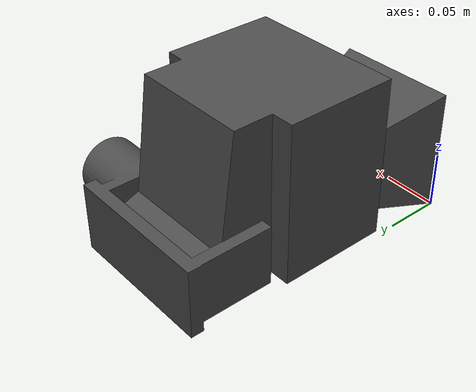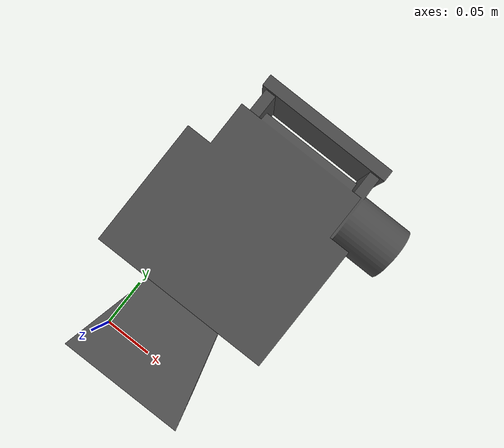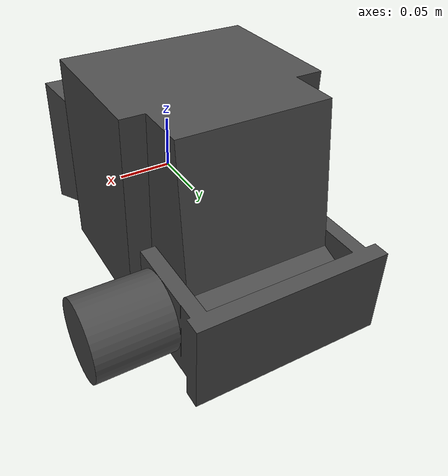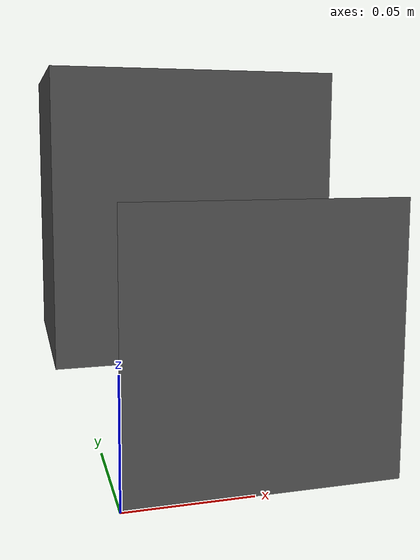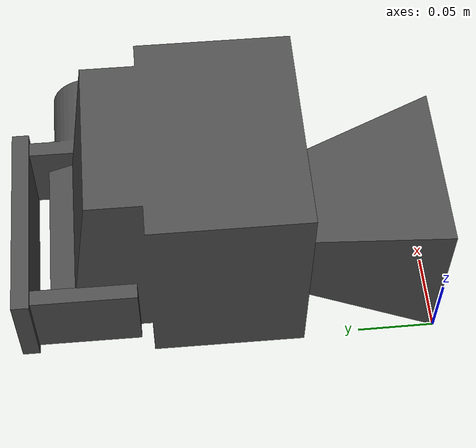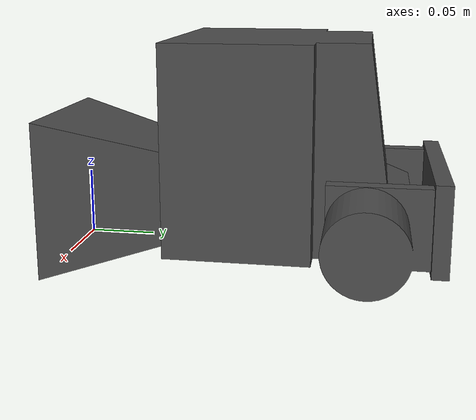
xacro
<?xml version="1.0" ?>
<robot name="flir_ptu" xmlns:xacro="http://www.ros.org/wiki/xacro">

  <link name="ptu_base">
    <inertial>
      <mass value="1"/>
      <origin rpy="0 0 0" xyz="0 0 0"/>
      <inertia ixx="0.166667" ixy="0" ixz="0" iyy="0.166667" iyz="0" izz="0.166667"/>
    </inertial>
    <collision name="ptu__collision">
      <origin rpy="0 0 0" xyz="0 0 0"/>
      <geometry>
        <mesh filename="package://rob10/urdf/meshes/ptu_base.stl" scale="1 1 1"/>
      </geometry>
    </collision>
    <visual name="ptu__visual">
      <material name="color">
       <color rgba="0.3 0.3 0.3 1"/>
      </material>
      <origin rpy="0 0 0" xyz="0 0 0"/>
      <geometry>
        <mesh filename="package://rob10/urdf/meshes/ptu_base.stl" scale="1 1 1"/>
      </geometry>
    </visual>
  </link>

  <joint name="ptu_panner" type="revolute">
    <parent link="ptu_base"/>
    <child link="ptu_pan"/>
    <axis xyz="0 -1 0"/>
    <!-- Rotates 2.9322 in both directions -->
    <limit effort="1000.0" lower="-2.9322" upper="2.9322" velocity="0.5"/>
    <origin xyz="0.055 0.09 0.055" rpy="0 4.7124 0"/>
  </joint>

  <link name="ptu_pan">
    <inertial>
      <mass value="1"/>
      <origin rpy="0 0 0" xyz="0 0 0"/>
      <inertia ixx="0.166667" ixy="0" ixz="0" iyy="0.166667" iyz="0" izz="0.166667"/>
    </inertial>
    <collision name="ptu__collision">
      <origin rpy="0 0 0" xyz="-0.03 0 -0.0654"/>
      <geometry>
        <mesh filename="package://rob10/urdf/meshes/ptu_pan.stl" scale="1 1 1"/>
      </geometry>
    </collision>
    <visual name="ptu__visual">
      <material name="color">
       <color rgba="0.3 0.3 0.3 1"/>
      </material>
      <origin rpy="0 0 0" xyz="-0.03 0 -0.0654"/>
      <geometry>
        <mesh filename="package://rob10/urdf/meshes/ptu_pan.stl" scale="1 1 1"/>
      </geometry>
    </visual>
  </link>

  <joint name="ptu_tilter" type="revolute">
    <parent link="ptu_pan"/>
    <child link="ptu_tilt"/>
    <axis xyz="-1 0 0"/>
    <!-- Rotates 1.5708 downwards and 0.5236 upwards -->
    <limit effort="1000.0" lower="-1.5708" upper="0.5236" velocity="0.5"/>
    <origin xyz="0 0.13 -0.11" rpy="0 4.7124 0"/>
  </joint>

  <link name="ptu_tilt">
    <inertial>
      <mass value="1"/>
      <origin rpy="0 0 0" xyz="0 0 0"/>
      <inertia ixx="0.166667" ixy="0" ixz="0" iyy="0.166667" iyz="0" izz="0.166667"/>
    </inertial>
    <collision name="ptu__collision">
      <origin rpy="0 0 0" xyz="-0.0025 -0.026 -0.026"/>
      <geometry>
        <mesh filename="package://rob10/urdf/meshes/ptu_tilt.stl" scale="1 1 1"/>
      </geometry>
    </collision>
    <visual name="ptu__visual">
      <material name="color">
       <color rgba="0.3 0.3 0.3 1"/>
      </material>
      <origin rpy="0 0 0" xyz="-0.0025 -0.026 -0.026"/>
      <geometry>
        <mesh filename="package://rob10/urdf/meshes/ptu_tilt.stl" scale="1 1 1"/>
      </geometry>
    </visual>
  </link>

  <link name="camera_ptu_link"/>

  <joint name="camera_ptu_joint" type="fixed">
    <parent link="ptu_tilt"/>
    <child link="camera_ptu_link"/>
    <origin xyz="0.11 0.05 0.02" rpy="-${pi/2} -${pi/2} 0"/>
  </joint>

  <transmission name="tran1">
    <type>transmission_interface/SimpleTransmission</type>
    <joint name="ptu_panner">
      <hardwareInterface>hardware_interface/VelocityJointInterface</hardwareInterface>
    </joint>
    <actuator name="motor1">
      <hardwareInterface>hardware_interface/VelocityJointInterface</hardwareInterface>
      <mechanicalReduction>1</mechanicalReduction>
    </actuator>
  </transmission>
  <transmission name="tran2">
    <type>transmission_interface/SimpleTransmission</type>
    <joint name="ptu_tilter">
      <hardwareInterface>hardware_interface/VelocityJointInterface</hardwareInterface>
    </joint>
    <actuator name="motor2">
      <hardwareInterface>hardware_interface/VelocityJointInterface</hardwareInterface>
      <mechanicalReduction>1</mechanicalReduction>
    </actuator>
  </transmission>

</robot>
